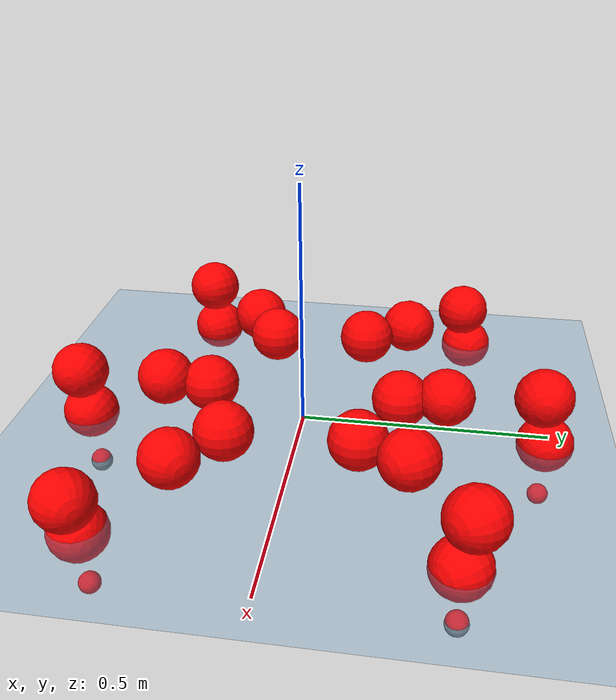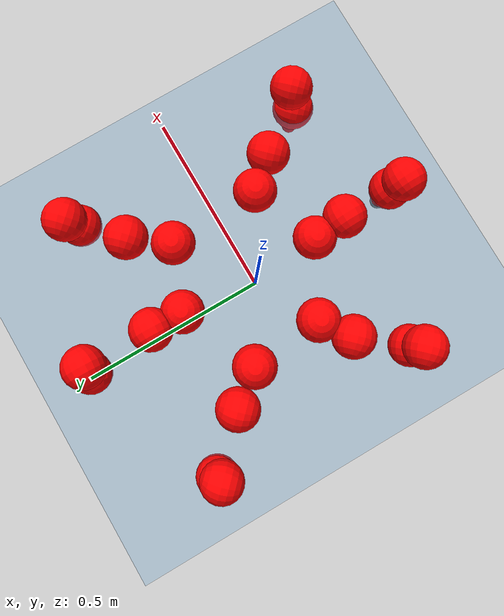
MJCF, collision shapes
<mujoco model="Golem">
  <compiler angle="radian" assetdir="assets" balanceinertia="true" inertiafromgeom="false"/>

  <option timestep="0.005" density="1.2" viscosity="2e-05"/>

  <size nkey="1"/>

  <visual>
    <quality shadowsize="8192"/>
    <map shadowclip="0.5"/>
  </visual>

  <default>
    <default class="/">
      <joint armature="0.01" damping="0.01" frictionloss="0.01"/>
      <geom contype="0" conaffinity="0" group="1" solref="-1000 -80"/>
      <site size="0.01 0.005 0.005" group="5"/>
      <general forcelimited="true" biastype="affine" gainprm="25" biasprm="0 -25 -0.5"/>
      <default class="visual">
        <geom type="mesh" group="2"/>
      </default>
      <default class="collision">
        <geom group="3"/>
      </default>
      <default class="foot">
        <geom size="0.01 0 0" condim="6" group="4" priority="1" solimp="0.015 1 0.01"/>
      </default>
      <default class="reward_collision_sphere">
        <geom group="5" rgba="1 0 0 1"/>
      </default>
    </default>
  </default>

  <asset>
    <texture type="skybox" colorspace="auto" name="//unnamed_texture_0" builtin="gradient" rgb1="0.95 0.95 0.95" rgb2="0.95 0.95 0.95" width="100" height="600"/>
    <texture type="2d" colorspace="auto" name="texplane" builtin="checker" rgb1="0.345 0.575 0.748" rgb2="0.345 0.575 0.748" markrgb="1 1 1" width="512" height="512"/>
    <material name="MatPlane" class="/" texture="texplane" texuniform="true" texrepeat="2 2" specular="0.9"/>
    <mesh name="body" class="/" file="body.stl" scale="0.001 0.001 0.001"/>
    <mesh name="coxa" class="/" file="coxa.stl" scale="0.001 0.001 0.001"/>
    <mesh name="femur" class="/" file="femur.stl" scale="0.001 0.001 0.001"/>
    <mesh name="tibia" class="/" file="tibia.stl" scale="0.001 0.001 0.001"/>
    <mesh name="tarsus" class="/" file="tarsus.stl" scale="0.001 0.001 0.001"/>
  </asset>

  <worldbody>
    <geom name="floor" class="/" size="100 100 0.125" type="plane" group="0" material="MatPlane"/>
    <light name="toplight_shadow" class="/" pos="0 0 5" dir="0.0990148 0.0990148 -0.990148" type="directional" ambient="0.04 0.04 0.04" diffuse="0.55 0.55 0.55" specular="0.12 0.12 0.12"/>
    <light name="toplight_fill" class="/" pos="0 0 5" dir="0.0990148 0.0990148 -0.990148" type="directional" castshadow="false" ambient="0.04 0.04 0.04" diffuse="0.3 0.3 0.3" specular="0.08 0.08 0.08"/>
    <body name="trunk" pos="0.0129554 0.0121405 -0.00691327" quat="0.999987 0.00379826 -0.00318929 0.00140112">
      <inertial pos="-0.0128238 -0.00615754 0.017925" quat="0.998094 0.034532 -0.0490754 -0.0143978" mass="9.84454" diaginertia="0.0202713 0.0920206 0.0442368"/>
      <joint name="//unnamed_joint_0" type="free"/>
      <geom name="//unnamed_geom_1" class="/" pos="0 0 0.0922302" quat="1 0 0 0" type="mesh" rgba="0.9 0.9 0.9 1" mesh="body"/>
      <site name="imu" class="/" pos="0.0793712 -0.0646385 0.1591" size="0.014256"/>
      <camera name="track" class="/" pos="0 -3.27108 0" quat="0.707107 0.707107 0 0" mode="trackcom"/>
      <camera name="ego_camera" class="/" pos="0.15602 0 0.14411" quat="-0.5 -0.5 0.5 0.5"/>
      <body name="coxa_RR" pos="-0.204505 -0.120241 0.107948" quat="0.385914 -0.00065164 0.00262789 -0.922531">
        <inertial pos="0.00293331 -0.00639728 -0.00913902" quat="0.999889 -0.00773856 0.0125784 -0.00180682" mass="0.52524" diaginertia="0.025956 0.09899 0.0693348"/>
        <joint name="coxa_joint_RR" class="/" pos="0 0 0" axis="0.0116964 0.0176532 -0.999776" range="-3.17657 3.34023" armature="0.0192997" damping="0.0506628" frictionloss="0.0179267"/>
        <geom name="//unnamed_geom_2" class="/" type="mesh" rgba="0.2 0.2 0.2 1" mesh="coxa"/>
        <geom name="//unnamed_geom_3" class="reward_collision_sphere" size="0.0570239" pos="-0.0360046 0 0"/>
        <body name="femur_RR" pos="0.0571855 -0.0189319 0.0060323" quat="0.499314 -0.499682 0.500231 0.500771">
          <inertial pos="0.0180816 -0.00222087 0.0192158" quat="0.995765 0.0108728 0.0384479 0.0827959" mass="0.68661" diaginertia="0.0308792 0.146188 0.0788519"/>
          <joint name="femur_joint_RR" class="/" pos="0 0 0" axis="0.0276662 0.0469986 -0.998512" range="-2.97415 3.18277" armature="0.0170714" damping="0" frictionloss="0.0129581"/>
          <geom name="//unnamed_geom_4" class="/" type="mesh" rgba="0.9 0.9 0.9 1" mesh="femur"/>
          <geom name="//unnamed_geom_5" class="reward_collision_sphere" size="0.0570239"/>
          <body name="tibia_RR" pos="-0.0114129 -0.174057 0.0177922" quat="-0.00203927 0.999997 0.000750848 -0.00110164">
            <inertial pos="0.000620907 0.000846645 0.0158616" quat="0.998181 0.00181571 0.0407094 -0.044442" mass="0.381061" diaginertia="0.0203932 0.0727031 0.0453828"/>
            <joint name="tibia_joint_RR" class="/" pos="0 0 0" axis="-0.0747419 -0.00555977 0.997187" stiffness="0.0573935" range="-2.89436 3.11265" armature="0.0221226" damping="0.0307611" frictionloss="0.0245787"/>
            <geom name="//unnamed_geom_6" class="/" type="mesh" rgba="0.2 0.2 0.2 1" mesh="tibia"/>
            <geom name="//unnamed_geom_7" class="reward_collision_sphere" size="0.0570239"/>
            <body name="tarsus_RR" pos="0.100474 -0.00988902 -0.0017396" quat="0.999999 -0.000842283 0.0005907 -0.00123139">
              <inertial pos="0.0821099 0.00322611 -0.00293402" quat="0.430423 0.533823 0.546075 0.481219" mass="0.50836" diaginertia="0.0251351 0.129208 0.0575902"/>
              <joint name="tarsus_joint_RR" class="/" pos="0 0 0" axis="0.0814206 0.0454754 0.995642" range="-3.04369 3.39513" armature="0.0212039" damping="3.17473e-05" frictionloss="0.0083516"/>
              <geom name="//unnamed_geom_8" class="/" type="mesh" rgba="0.9 0.9 0.9 1" mesh="tarsus"/>
              <geom name="foot_1" class="foot" size="0.0131071" pos="0.134417 0 0" quat="0 -0.707107 0 0.707107"/>
              <geom name="//unnamed_geom_10" class="reward_collision_sphere" size="0.0570239"/>
              <geom name="//unnamed_geom_11" class="reward_collision_sphere" size="0.021384" pos="0.129016 0 0"/>
              <site name="foot_1" class="foot" pos="0.134417 0 0" quat="0 -0.707107 0 0.707107" size="0.014256"/>
            </body>
          </body>
        </body>
      </body>
      <body name="coxa_RM" pos="0.00628976 -0.234056 0.0874536" quat="0.710874 0.00763125 -0.000118548 -0.703278">
        <inertial pos="0.0151275 -0.00353415 0.0169104" quat="0.997495 0.0435596 -0.0470562 0.0298797" mass="0.563168" diaginertia="0.0352868 0.115262 0.0775163"/>
        <joint name="coxa_joint_RM" class="/" pos="0 0 0" axis="-0.000508033 -0.00043264 -1" range="-2.99753 3.25346" armature="0.00963869" damping="0.036356" frictionloss="0.0215987"/>
        <geom name="//unnamed_geom_12" class="/" type="mesh" rgba="0.2 0.2 0.2 1" mesh="coxa"/>
        <geom name="//unnamed_geom_13" class="reward_collision_sphere" size="0.0570239" pos="-0.0360046 0 0"/>
        <body name="femur_RM" pos="0.0560738 0.00649785 0.0132221" quat="0.494525 -0.504049 0.500919 0.500459">
          <inertial pos="-0.0172514 -0.00280013 0.000780593" quat="0.995965 0.0516048 0.0428744 -0.0595944" mass="0.624911" diaginertia="0.022055 0.136695 0.0661174"/>
          <joint name="femur_joint_RM" class="/" pos="0 0 0" axis="-0.068229 -0.0318619 -0.997161" stiffness="0.0598983" range="-3.2151 3.18666" armature="0.0079615" damping="0" frictionloss="0.0181291"/>
          <geom name="//unnamed_geom_14" class="/" type="mesh" rgba="0.9 0.9 0.9 1" mesh="femur"/>
          <geom name="//unnamed_geom_15" class="reward_collision_sphere" size="0.0570239"/>
          <body name="tibia_RM" pos="-0.00492585 -0.181737 0.00158087" quat="-0.000472925 1 -0.000231505 0.00066395">
            <inertial pos="0.0180375 -0.00996003 0.0122416" quat="0.999479 0.027397 0.0126011 0.0114663" mass="0.444189" diaginertia="0.0183124 0.123711 0.0684982"/>
            <joint name="tibia_joint_RM" class="/" pos="0 0 0" axis="-0.0302756 -0.0571725 0.997905" stiffness="0.0372657" range="-3.22313 3.33543" armature="0.0117993" damping="0.000953371" frictionloss="0.0211195"/>
            <geom name="//unnamed_geom_16" class="/" type="mesh" rgba="0.2 0.2 0.2 1" mesh="tibia"/>
            <geom name="//unnamed_geom_17" class="reward_collision_sphere" size="0.0570239"/>
            <body name="tarsus_RM" pos="0.0939037 -0.0101036 -0.00680591" quat="0.999997 0.00114406 -0.000673833 0.00181601">
              <inertial pos="0.0794581 0.00868344 0.00518489" quat="0.492925 0.475086 0.524921 0.505743" mass="0.481649" diaginertia="0.026612 0.107695 0.0454705"/>
              <joint name="tarsus_joint_RM" class="/" pos="0 0 0" axis="-0.0014991 0.0720171 0.997402" range="-3.23566 3.1133" armature="0.014797" damping="0.0169169" frictionloss="0.0107804"/>
              <geom name="//unnamed_geom_18" class="/" type="mesh" rgba="0.9 0.9 0.9 1" mesh="tarsus"/>
              <geom name="foot_2" class="foot" size="0.0231181" pos="0.134417 0 0" quat="0 -0.707107 0 0.707107"/>
              <geom name="//unnamed_geom_20" class="reward_collision_sphere" size="0.0570239"/>
              <geom name="//unnamed_geom_21" class="reward_collision_sphere" size="0.021384" pos="0.129016 0 0"/>
              <site name="foot_2" class="foot" pos="0.134417 0 0" quat="0 -0.707107 0 0.707107" size="0.014256"/>
            </body>
          </body>
        </body>
      </body>
      <body name="coxa_RF" pos="0.211684 -0.151671 0.10234" quat="0.924158 -0.000571664 -0.000256011 -0.38201">
        <inertial pos="0.0188624 -0.00669274 -0.00406898" quat="0.997002 0.0128921 -0.00867403 -0.075803" mass="0.382276" diaginertia="0.0184879 0.124659 0.0559626"/>
        <joint name="coxa_joint_RF" class="/" pos="0 0 0" axis="-0.00294522 0.00112127 -0.999995" range="-2.93563 3.14292" armature="0.00482777" damping="0.0498119" frictionloss="0.0206704"/>
        <geom name="//unnamed_geom_22" class="/" type="mesh" rgba="0.2 0.2 0.2 1" mesh="coxa"/>
        <geom name="//unnamed_geom_23" class="reward_collision_sphere" size="0.0570239" pos="-0.0360046 0 0"/>
        <body name="femur_RF" pos="0.0738872 -0.00801225 -0.0168981" quat="0.499178 -0.501767 0.502292 0.496744">
          <inertial pos="-0.0118835 -0.0179718 -0.0114837" quat="0.999679 -0.0153111 0.0130773 -0.0153506" mass="0.656541" diaginertia="0.0203475 0.135676 0.0647255"/>
          <joint name="femur_joint_RF" class="/" pos="0 0 0" axis="-0.0549898 0.0311853 -0.998" stiffness="0.087844" range="-3.26957 3.40146" armature="0.0129199" damping="0" frictionloss="0.0199136"/>
          <geom name="//unnamed_geom_24" class="/" type="mesh" rgba="0.9 0.9 0.9 1" mesh="femur"/>
          <geom name="//unnamed_geom_25" class="reward_collision_sphere" size="0.0570239"/>
          <body name="tibia_RF" pos="0.0105272 -0.191363 -0.0146717" quat="0.0013511 0.999997 0.000290973 0.00192626">
            <inertial pos="0.0166186 0.0136068 -0.0155038" quat="0.998231 0.0581761 -0.0115431 -0.00416888" mass="0.480434" diaginertia="0.0258253 0.110044 0.0595214"/>
            <joint name="tibia_joint_RF" class="/" pos="0 0 0" axis="-0.0309114 -0.0140784 0.999423" range="-3.23523 3.41578" armature="0.0173415" damping="0.105916" frictionloss="0.0110396"/>
            <geom name="//unnamed_geom_26" class="/" type="mesh" rgba="0.2 0.2 0.2 1" mesh="tibia"/>
            <geom name="//unnamed_geom_27" class="reward_collision_sphere" size="0.0570239"/>
            <body name="tarsus_RF" pos="0.0905288 -0.0167495 0.0162557" quat="0.999978 0.00654061 0.000971192 7.64398e-05">
              <inertial pos="0.0765504 -0.00083214 0.00378739" quat="0.468031 0.508869 0.515927 0.505785" mass="0.525822" diaginertia="0.0222351 0.0924092 0.0758205"/>
              <joint name="tarsus_joint_RF" class="/" pos="0 0 0" axis="0.0415387 0.0215802 0.998904" stiffness="0.0404812" range="-2.91181 3.09783" armature="0.0041961" damping="0" frictionloss="0.000746702"/>
              <geom name="//unnamed_geom_28" class="/" type="mesh" rgba="0.9 0.9 0.9 1" mesh="tarsus"/>
              <geom name="foot_3" class="foot" size="0.00500962" pos="0.134417 0 0" quat="0 -0.707107 0 0.707107"/>
              <geom name="//unnamed_geom_30" class="reward_collision_sphere" size="0.0570239"/>
              <geom name="//unnamed_geom_31" class="reward_collision_sphere" size="0.021384" pos="0.129016 0 0"/>
              <site name="foot_3" class="foot" pos="0.134417 0 0" quat="0 -0.707107 0 0.707107" size="0.014256"/>
            </body>
          </body>
        </body>
      </body>
      <body name="coxa_LR" pos="-0.222617 0.127189 0.105542" quat="0.388356 -0.00545118 0.00166644 0.921492">
        <inertial pos="0.006371 -0.00773362 0.018454" quat="0.997369 0.0370721 -0.00550827 -0.0620589" mass="0.86051" diaginertia="0.0305665 0.149506 0.0706563"/>
        <joint name="coxa_joint_LR" class="/" pos="0 0 0" axis="0.00482514 0.00239629 -0.999985" range="-2.96969 2.76751" armature="0.00413642" damping="0" frictionloss="0.0274622"/>
        <geom name="//unnamed_geom_32" class="/" type="mesh" rgba="0.2 0.2 0.2 1" mesh="coxa"/>
        <geom name="//unnamed_geom_33" class="reward_collision_sphere" size="0.0570239" pos="-0.0360046 0 0"/>
        <body name="femur_LR" pos="0.0755219 -0.0125143 -0.00260746" quat="0.500211 -0.498616 0.499483 0.501686">
          <inertial pos="-0.0013664 0.00512403 0.00540905" quat="0.998235 0.0158241 -0.044269 -0.0362916" mass="0.6675" diaginertia="0.0321293 0.102309 0.0666953"/>
          <joint name="femur_joint_LR" class="/" pos="0 0 0" axis="-0.0417148 -0.011961 0.999058" stiffness="0.0630072" range="-3.22816 3.42827" armature="0.00549755" damping="0" frictionloss="0.0203456"/>
          <geom name="//unnamed_geom_34" class="/" type="mesh" rgba="0.9 0.9 0.9 1" mesh="femur"/>
          <geom name="//unnamed_geom_35" class="reward_collision_sphere" size="0.0570239"/>
          <body name="tibia_LR" pos="0.0153569 -0.181591 0.00843526" quat="-0.00340106 0.999974 -0.000544924 -0.00637227">
            <inertial pos="-0.0126444 -0.0175254 -0.00353933" quat="0.99725 -0.0611665 -0.0146705 0.0391779" mass="0.721578" diaginertia="0.020216 0.100767 0.0813549"/>
            <joint name="tibia_joint_LR" class="/" pos="0 0 0" axis="-0.00318007 -0.00057833 -0.999995" range="-3.07637 3.18626" armature="0.00750599" damping="0" frictionloss="0.00584359"/>
            <geom name="//unnamed_geom_36" class="/" type="mesh" rgba="0.2 0.2 0.2 1" mesh="tibia"/>
            <geom name="//unnamed_geom_37" class="reward_collision_sphere" size="0.0570239"/>
            <body name="tarsus_LR" pos="0.0891737 0.00909299 0.0110589" quat="0.999986 -0.00214548 0.00472013 -0.000484545">
              <inertial pos="0.0829604 0.0126089 0.00919957" quat="0.456879 0.529092 0.511899 0.499283" mass="0.771498" diaginertia="0.0334306 0.140418 0.078267"/>
              <joint name="tarsus_joint_LR" class="/" pos="0 0 0" axis="0.00219918 -0.0256096 -0.99967" stiffness="0.00320823" range="-3.00821 3.28214" armature="0.0283269" damping="0" frictionloss="0.0208281"/>
              <geom name="//unnamed_geom_38" class="/" type="mesh" rgba="0.9 0.9 0.9 1" mesh="tarsus"/>
              <geom name="foot_4" class="foot" size="0.0102745" pos="0.134417 0 0" quat="0.707107 0 -0.707107 0"/>
              <geom name="//unnamed_geom_40" class="reward_collision_sphere" size="0.0570239"/>
              <geom name="//unnamed_geom_41" class="reward_collision_sphere" size="0.021384" pos="0.129016 0 0"/>
              <site name="foot_4" class="foot" pos="0.134417 0 0" quat="0.707107 0 -0.707107 0" size="0.014256"/>
            </body>
          </body>
        </body>
      </body>
      <body name="coxa_LM" pos="0.0130307 0.225068 0.0870595" quat="0.711225 0.000643011 -0.00789312 0.70292">
        <inertial pos="-0.0154718 0.0165342 0.0120815" quat="0.997073 0.0177075 -0.0742589 0.00407329" mass="0.55705" diaginertia="0.0253354 0.0925553 0.0557128"/>
        <joint name="coxa_joint_LM" class="/" pos="0 0 0" axis="0.00140649 -0.00710365 -0.999974" range="-3.07312 3.0765" armature="0.00150775" damping="0.063393" frictionloss="0.0079477"/>
        <geom name="//unnamed_geom_42" class="/" type="mesh" rgba="0.2 0.2 0.2 1" mesh="coxa"/>
        <geom name="//unnamed_geom_43" class="reward_collision_sphere" size="0.0570239" pos="-0.0360046 0 0"/>
        <body name="femur_LM" pos="0.0532935 0.000751049 0.0102984" quat="0.502722 -0.501472 0.501815 0.493942">
          <inertial pos="0.0151077 0.000932166 0.0166254" quat="0.998168 -0.03937 -0.0394158 -0.02361" mass="0.382763" diaginertia="0.0225671 0.0901266 0.0520868"/>
          <joint name="femur_joint_LM" class="/" pos="0 0 0" axis="0.0131785 -0.0161927 0.999782" stiffness="0.0100157" range="-3.39321 2.97411" armature="0.00446747" damping="0.0620579" frictionloss="0.0133875"/>
          <geom name="//unnamed_geom_44" class="/" type="mesh" rgba="0.9 0.9 0.9 1" mesh="femur"/>
          <geom name="//unnamed_geom_45" class="reward_collision_sphere" size="0.0570239"/>
          <body name="tibia_LM" pos="-0.0123665 -0.185956 0.0014448" quat="0.00114713 0.999991 0.00395573 -0.00106232">
            <inertial pos="-0.0181339 -0.0187884 -0.0191914" quat="0.999892 0.000800098 -0.0117852 0.00879624" mass="0.624653" diaginertia="0.0297881 0.14891 0.0541969"/>
            <joint name="tibia_joint_LM" class="/" pos="0 0 0" axis="-0.0358767 0.0457379 -0.998309" stiffness="0.0693243" range="-3.30566 3.0846" armature="0.00433624" damping="0" frictionloss="0.0245244"/>
            <geom name="//unnamed_geom_46" class="/" type="mesh" rgba="0.2 0.2 0.2 1" mesh="tibia"/>
            <geom name="//unnamed_geom_47" class="reward_collision_sphere" size="0.0570239"/>
            <body name="tarsus_LM" pos="0.115235 0.0158635 -0.0149703" quat="0.999979 -0.00404577 0.00142111 0.00489344">
              <inertial pos="0.06251 -0.0100572 -0.0124999" quat="0.515887 0.493053 0.509674 0.480616" mass="0.449062" diaginertia="0.0233868 0.0679935 0.0540498"/>
              <joint name="tarsus_joint_LM" class="/" pos="0 0 0" axis="-0.0732122 -0.0144166 -0.997212" range="-2.74075 3.02204" armature="0.0125895" damping="0" frictionloss="0.0127655"/>
              <geom name="//unnamed_geom_48" class="/" type="mesh" rgba="0.9 0.9 0.9 1" mesh="tarsus"/>
              <geom name="foot_5" class="foot" size="0.0132941" pos="0.134417 0 0" quat="0.707107 0 -0.707107 0"/>
              <geom name="//unnamed_geom_50" class="reward_collision_sphere" size="0.0570239"/>
              <geom name="//unnamed_geom_51" class="reward_collision_sphere" size="0.021384" pos="0.129016 0 0"/>
              <site name="foot_5" class="foot" pos="0.134417 0 0" quat="0.707107 0 -0.707107 0" size="0.014256"/>
            </body>
          </body>
        </body>
      </body>
      <body name="coxa_LF" pos="0.200758 0.146914 0.0980111" quat="0.925557 0.00179541 -0.00689623 0.378541">
        <inertial pos="0.00268223 -0.0184406 0.00361551" quat="0.999761 -0.00278102 -0.00519334 0.0210565" mass="0.52754" diaginertia="0.0220869 0.073542 0.0457889"/>
        <joint name="coxa_joint_LF" class="/" pos="0 0 0" axis="-0.0141086 -0.0625094 -0.997945" range="-3.1821 3.0373" armature="0.00109165" damping="0" frictionloss="0.00821206"/>
        <geom name="//unnamed_geom_52" class="/" type="mesh" rgba="0.2 0.2 0.2 1" mesh="coxa"/>
        <geom name="//unnamed_geom_53" class="reward_collision_sphere" size="0.0570239" pos="-0.0360046 0 0"/>
        <body name="femur_LF" pos="0.0795639 0.0198708 0.0175672" quat="0.503258 -0.494326 0.49882 0.50354">
          <inertial pos="-0.0133596 0.00711495 -0.019157" quat="0.996741 0.0400925 -0.0315013 0.0625044" mass="0.543275" diaginertia="0.0290384 0.0892695 0.0666382"/>
          <joint name="femur_joint_LF" class="/" pos="0 0 0" axis="0.0661297 0.0301396 0.997356" stiffness="0.0529386" range="-3.07486 3.49832" armature="0.0138936" damping="0.0769575" frictionloss="0.00870753"/>
          <geom name="//unnamed_geom_54" class="/" type="mesh" rgba="0.9 0.9 0.9 1" mesh="femur"/>
          <geom name="//unnamed_geom_55" class="reward_collision_sphere" size="0.0570239"/>
          <body name="tibia_LF" pos="0.013721 -0.165521 -0.00419923" quat="-0.00612377 0.999967 -0.00398426 -0.00364298">
            <inertial pos="-0.00757719 0.0175337 0.00153586" quat="0.99948 0.00674838 -0.027451 -0.0154871" mass="0.597631" diaginertia="0.0280647 0.115804 0.0680035"/>
            <joint name="tibia_joint_LF" class="/" pos="0 0 0" axis="0.0642352 -0.0429737 -0.997009" stiffness="0.0216197" range="-2.82874 3.04171" armature="0.00562485" damping="0.010309" frictionloss="0.00220111"/>
            <geom name="//unnamed_geom_56" class="/" type="mesh" rgba="0.2 0.2 0.2 1" mesh="tibia"/>
            <geom name="//unnamed_geom_57" class="reward_collision_sphere" size="0.0570239"/>
            <body name="tarsus_LF" pos="0.110951 -0.0126222 0.0103798" quat="0.999952 -0.0038466 0.0026032 0.00858088">
              <inertial pos="0.0848627 0.00632104 0.00443003" quat="0.479532 0.516235 0.503724 0.499813" mass="0.545989" diaginertia="0.0259763 0.120123 0.069977"/>
              <joint name="tarsus_joint_LF" class="/" pos="0 0 0" axis="0.0916152 -0.0279104 -0.995403" range="-3.32648 3.44752" armature="0.00791182" damping="0.0864175" frictionloss="0.00625"/>
              <geom name="//unnamed_geom_58" class="/" type="mesh" rgba="0.9 0.9 0.9 1" mesh="tarsus"/>
              <geom name="foot_6" class="foot" size="0.0225679" pos="0.134417 0 0" quat="0.707107 0 -0.707107 0"/>
              <geom name="//unnamed_geom_60" class="reward_collision_sphere" size="0.0570239"/>
              <geom name="//unnamed_geom_61" class="reward_collision_sphere" size="0.021384" pos="0.129016 0 0"/>
              <site name="foot_6" class="foot" pos="0.134417 0 0" quat="0.707107 0 -0.707107 0" size="0.014256"/>
            </body>
          </body>
        </body>
      </body>
    </body>
  </worldbody>

  <contact>
    <pair class="/" geom1="floor" geom2="foot_1" name="//unnamed_contact_0"/>
    <pair class="/" geom1="floor" geom2="foot_2" name="//unnamed_contact_1"/>
    <pair class="/" geom1="floor" geom2="foot_3" name="//unnamed_contact_2"/>
    <pair class="/" geom1="floor" geom2="foot_4" name="//unnamed_contact_3"/>
    <pair class="/" geom1="floor" geom2="foot_5" name="//unnamed_contact_4"/>
    <pair class="/" geom1="floor" geom2="foot_6" name="//unnamed_contact_5"/>
  </contact>

  <actuator>
    <general name="coxa_joint_RR" class="/" joint="coxa_joint_RR" forcerange="-17.3002 17.3002" gainprm="27.2619" biasprm="0 -27.2619 -0.93565"/>
    <general name="femur_joint_RR" class="/" joint="femur_joint_RR" forcerange="-6.2025 6.2025" gainprm="27.2619" biasprm="0 -27.2619 -0.93565"/>
    <general name="tibia_joint_RR" class="/" joint="tibia_joint_RR" forcerange="-17.7423 17.7423" gainprm="27.2619" biasprm="0 -27.2619 -0.93565"/>
    <general name="tarsus_joint_RR" class="/" joint="tarsus_joint_RR" forcerange="-5.84581 5.84581" gainprm="27.2619" biasprm="0 -27.2619 -0.93565"/>
    <general name="coxa_joint_RM" class="/" joint="coxa_joint_RM" forcerange="-10.508 10.508" gainprm="27.2619" biasprm="0 -27.2619 -0.93565"/>
    <general name="femur_joint_RM" class="/" joint="femur_joint_RM" forcerange="-10.366 10.366" gainprm="27.2619" biasprm="0 -27.2619 -0.93565"/>
    <general name="tibia_joint_RM" class="/" joint="tibia_joint_RM" forcerange="-16.8844 16.8844" gainprm="27.2619" biasprm="0 -27.2619 -0.93565"/>
    <general name="tarsus_joint_RM" class="/" joint="tarsus_joint_RM" forcerange="-3.23438 3.23438" gainprm="27.2619" biasprm="0 -27.2619 -0.93565"/>
    <general name="coxa_joint_RF" class="/" joint="coxa_joint_RF" forcerange="-7.52443 7.52443" gainprm="27.2619" biasprm="0 -27.2619 -0.93565"/>
    <general name="femur_joint_RF" class="/" joint="femur_joint_RF" forcerange="-11.9675 11.9675" gainprm="27.2619" biasprm="0 -27.2619 -0.93565"/>
    <general name="tibia_joint_RF" class="/" joint="tibia_joint_RF" forcerange="-3.63821 3.63821" gainprm="27.2619" biasprm="0 -27.2619 -0.93565"/>
    <general name="tarsus_joint_RF" class="/" joint="tarsus_joint_RF" forcerange="-6.29434 6.29434" gainprm="27.2619" biasprm="0 -27.2619 -0.93565"/>
    <general name="coxa_joint_LR" class="/" joint="coxa_joint_LR" forcerange="-9.86149 9.86149" gainprm="27.2619" biasprm="0 -27.2619 -0.93565"/>
    <general name="femur_joint_LR" class="/" joint="femur_joint_LR" forcerange="-16.3521 16.3521" gainprm="27.2619" biasprm="0 -27.2619 -0.93565"/>
    <general name="tibia_joint_LR" class="/" joint="tibia_joint_LR" forcerange="-14.4805 14.4805" gainprm="27.2619" biasprm="0 -27.2619 -0.93565"/>
    <general name="tarsus_joint_LR" class="/" joint="tarsus_joint_LR" forcerange="-15.5423 15.5423" gainprm="27.2619" biasprm="0 -27.2619 -0.93565"/>
    <general name="coxa_joint_LM" class="/" joint="coxa_joint_LM" forcerange="-14.4822 14.4822" gainprm="27.2619" biasprm="0 -27.2619 -0.93565"/>
    <general name="femur_joint_LM" class="/" joint="femur_joint_LM" forcerange="-13.6494 13.6494" gainprm="27.2619" biasprm="0 -27.2619 -0.93565"/>
    <general name="tibia_joint_LM" class="/" joint="tibia_joint_LM" forcerange="-15.8657 15.8657" gainprm="27.2619" biasprm="0 -27.2619 -0.93565"/>
    <general name="tarsus_joint_LM" class="/" joint="tarsus_joint_LM" forcerange="-13.2398 13.2398" gainprm="27.2619" biasprm="0 -27.2619 -0.93565"/>
    <general name="coxa_joint_LF" class="/" joint="coxa_joint_LF" forcerange="-14.0859 14.0859" gainprm="27.2619" biasprm="0 -27.2619 -0.93565"/>
    <general name="femur_joint_LF" class="/" joint="femur_joint_LF" forcerange="-7.31047 7.31047" gainprm="27.2619" biasprm="0 -27.2619 -0.93565"/>
    <general name="tibia_joint_LF" class="/" joint="tibia_joint_LF" forcerange="-5.21864 5.21864" gainprm="27.2619" biasprm="0 -27.2619 -0.93565"/>
    <general name="tarsus_joint_LF" class="/" joint="tarsus_joint_LF" forcerange="-14.4113 14.4113" gainprm="27.2619" biasprm="0 -27.2619 -0.93565"/>
  </actuator>

  <sensor>
    <gyro site="imu" name="imu_angular_velocity"/>
    <velocimeter site="imu" name="imu_linear_velocity"/>
    <framelinvel objtype="site" objname="foot_1" name="foot_1_global_linear_velocity"/>
    <framelinvel objtype="site" objname="foot_2" name="foot_2_global_linear_velocity"/>
    <framelinvel objtype="site" objname="foot_3" name="foot_3_global_linear_velocity"/>
    <framelinvel objtype="site" objname="foot_4" name="foot_4_global_linear_velocity"/>
    <framelinvel objtype="site" objname="foot_5" name="foot_5_global_linear_velocity"/>
    <framelinvel objtype="site" objname="foot_6" name="foot_6_global_linear_velocity"/>
  </sensor>

  <keyframe>
    <key name="home" qpos="0 0 0.1457 1 0 0 0 0 0 0 0 0 0 0 0 0 0 0 0 0 0 0 0 0 0 0 0 0 0 0 0"/>
  </keyframe>
</mujoco>
